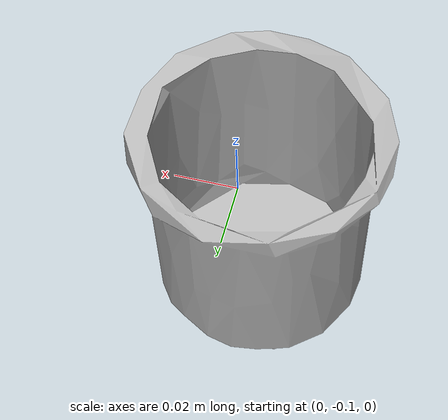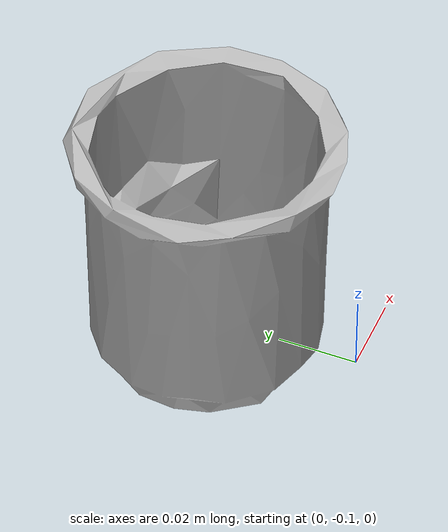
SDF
<?xml version="1.0"?>
<sdf version="1.6">
    <model name="c_cups">
        <pose>0 0 0.01 0 0 0</pose>
        <link name="link_00">
            <pose>0.0 0 0 0 0 0</pose>
            <visual name="visual_00">
                <geometry>
                    <mesh>
                        <uri>model://c_cups/textured.dae</uri>
                    </mesh>
                </geometry>
            </visual>
            <collision name="collision">
                <geometry>
                    <mesh>
                        <uri>model://c_cups/collision.dae</uri>
                    </mesh>
                </geometry>
                <surface>
                    <friction>
                        <ode>
                            <mu>100</mu>
                            <mu2>50</mu2>
                            <fdir1>0.0 0.0 0.0</fdir1>
                            <slip1>0.0</slip1>
                            <slip2>0.0</slip2>
                        </ode>
                    </friction>
                    <contact>
                        <ode>
                            <max_vel>0.1</max_vel>
                            <min_depth>0.001</min_depth>
                        </ode>
                    </contact>
                </surface>
                <max_contacts>3</max_contacts>
            </collision>
            <inertial>
                <pose> -0.014 -0.065 0.031 0 0 0</pose>
                <inertia>
                    <ixx>9.999999999999999e-03</ixx>
                    <ixy>-0.0</ixy>
                    <ixz>-0.0</ixz>
                    <iyy>9.999999999999999e-03</iyy>
                    <iyz>0.0</iyz>
                    <izz>9.999999999999999e-03</izz>
                </inertia>
            </inertial>
        </link>
    </model>
</sdf>
